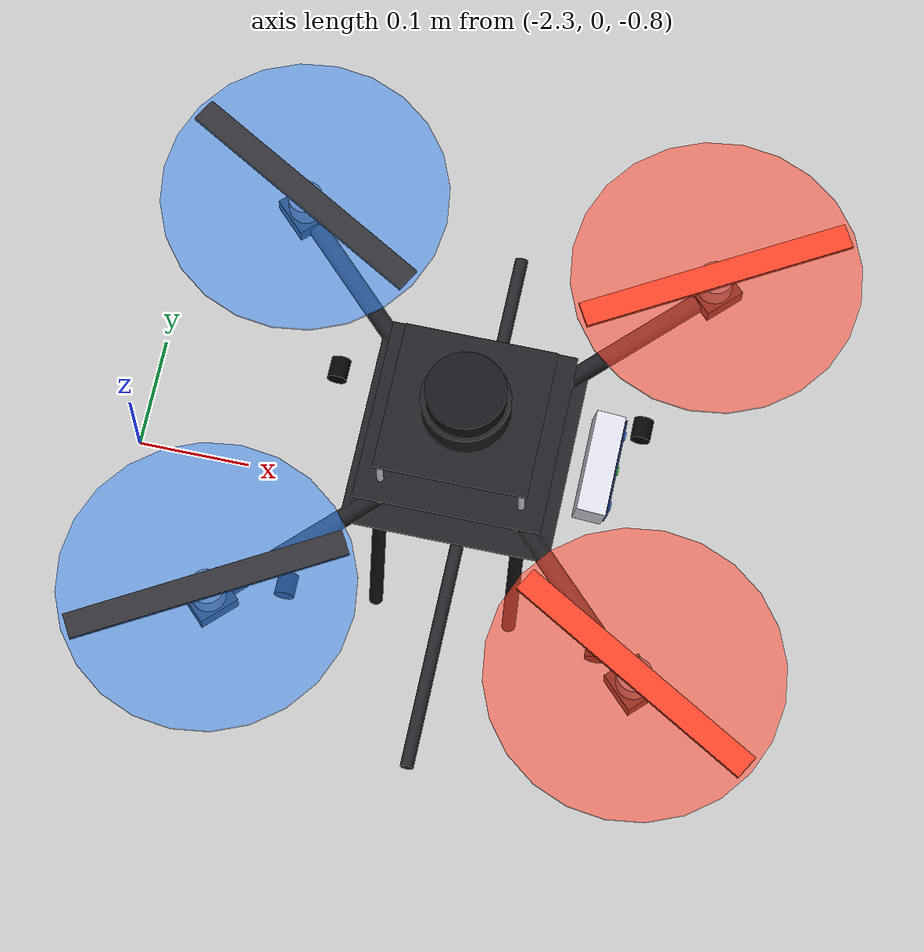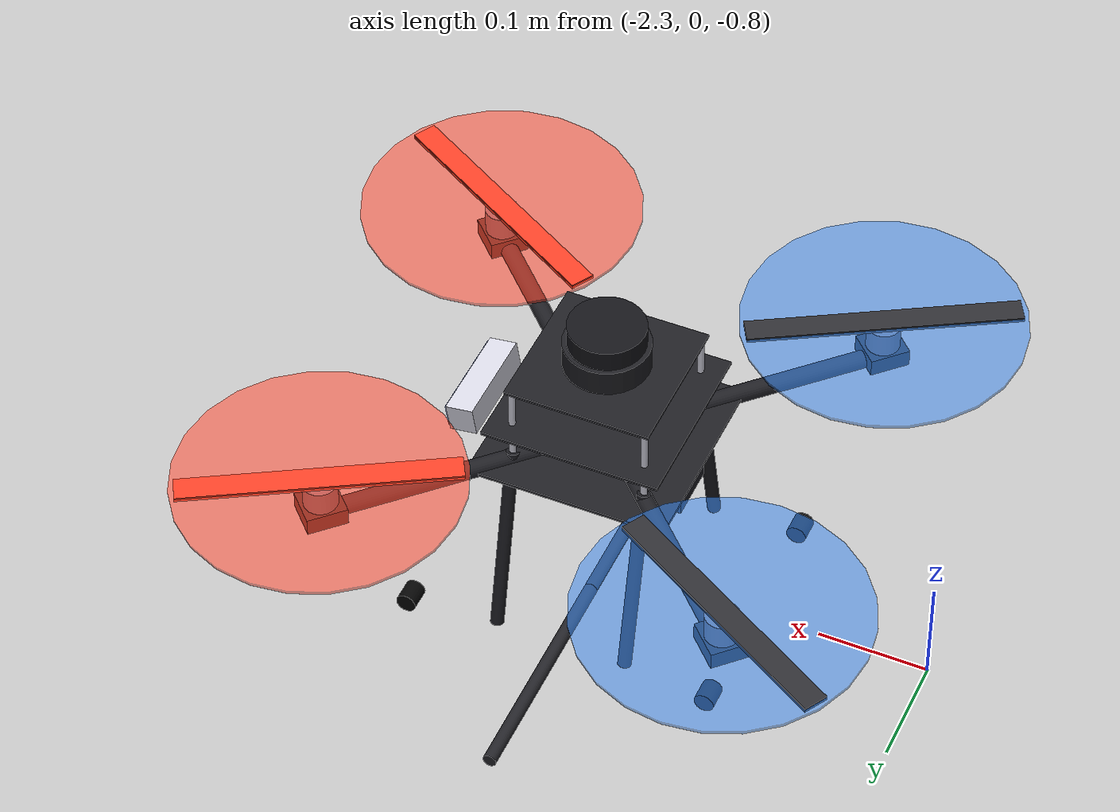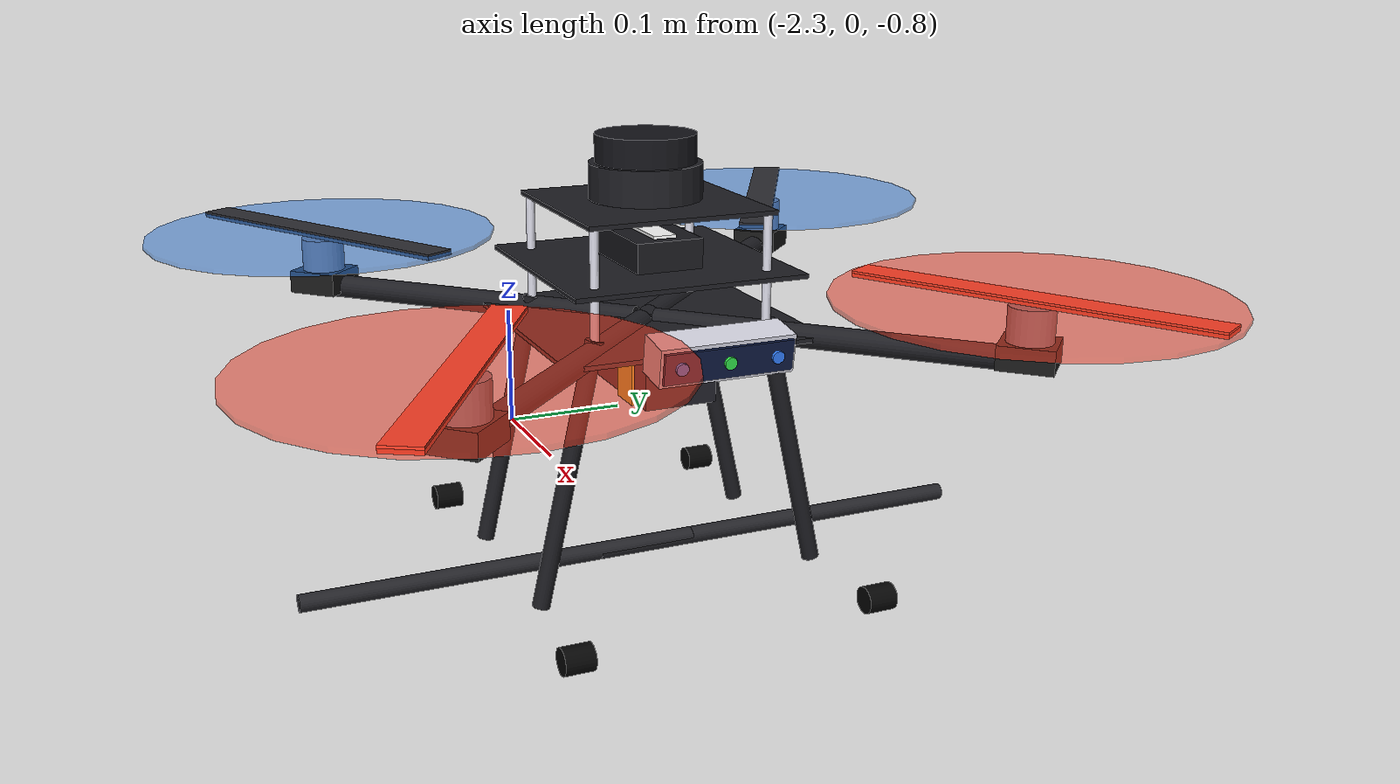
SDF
<sdf version="1.9">
 <world name="default">
  <plugin filename="gz-sim-physics-system" name="gz::sim::systems::Physics"/>
  <plugin filename="gz-sim-sensors-system" name="gz::sim::systems::Sensors">
   <render_engine>ogre2</render_engine>
  </plugin>
  <plugin filename="gz-sim-user-commands-system" name="gz::sim::systems::UserCommands"/>
  <plugin filename="gz-sim-scene-broadcaster-system" name="gz::sim::systems::SceneBroadcaster"/>
  <scene>
   <ambient>0.18 0.17 0.15 1.0</ambient>
   <background>0.01 0.01 0.02 1.0</background>
   <shadows>0</shadows>
  </scene>
  <gravity>0 0 -9.8066</gravity>
  <magnetic_field>6e-06 2.3e-05 -4.2e-05</magnetic_field>
  <atmosphere type="adiabatic"/>
  <physics name="default_physics" default="0" type="ode">
   <max_step_size>0.004</max_step_size>
   <real_time_factor>1</real_time_factor>
   <real_time_update_rate>250</real_time_update_rate>
  </physics>
  <light type="point" name="entrance_light">
   <pose>-2.0 0.0 3.5 0 0 0</pose>
   <diffuse>0.90 0.85 0.72 1</diffuse>
   <specular>0.15 0.15 0.12 1</specular>
   <attenuation>
    <range>30</range>
    <constant>0.22</constant>
    <linear>0.05</linear>
    <quadratic>0.008</quadratic>
   </attenuation>
   <cast_shadows>false</cast_shadows>
  </light>
  <light type="point" name="deep_gallery_light">
   <pose>30.0 -5.0 4.0 0 0 0</pose>
   <diffuse>0.85 0.82 0.70 1</diffuse>
   <specular>0.12 0.12 0.10 1</specular>
   <attenuation>
    <range>45</range>
    <constant>0.20</constant>
    <linear>0.04</linear>
    <quadratic>0.005</quadratic>
   </attenuation>
   <cast_shadows>false</cast_shadows>
  </light>
  <light type="point" name="gallery_b_light">
   <pose>60.0 -20.0 3.5 0 0 0</pose>
   <diffuse>0.88 0.84 0.75 1</diffuse>
   <specular>0.12 0.12 0.10 1</specular>
   <attenuation>
    <range>40</range>
    <constant>0.22</constant>
    <linear>0.05</linear>
    <quadratic>0.007</quadratic>
   </attenuation>
   <cast_shadows>false</cast_shadows>
  </light>
  <light type="point" name="tunnel_deep_light">
   <pose>80.0 -40.0 3.0 0 0 0</pose>
   <diffuse>0.82 0.80 0.72 1</diffuse>
   <specular>0.10 0.10 0.08 1</specular>
   <attenuation>
    <range>35</range>
    <constant>0.25</constant>
    <linear>0.06</linear>
    <quadratic>0.009</quadratic>
   </attenuation>
   <cast_shadows>false</cast_shadows>
  </light>
  <model name="mine_floor">
   <static>true</static>
   <pose>40.0 -20.0 -0.85 0 0 0</pose>
   <link name="link">
    <collision name="floor_col">
     <geometry><box><size>250 120 0.3</size></box></geometry>
     <surface>
      <friction><ode><mu>0.9</mu><mu2>0.9</mu2></ode></friction>
      <contact><ode><max_vel>0.1</max_vel></ode></contact>
     </surface>
    </collision>
   </link>
  </model>
  <model name="mine_ceiling">
   <static>true</static>
   <pose>40.0 -20.0 6.8 0 0 0</pose>
   <link name="link">
    <collision name="ceil_col"><geometry><box><size>250 120 0.3</size></box></geometry></collision>
   </link>
  </model>
  <model name="mine_wall_left">
   <static>true</static>
   <pose>40.0 8.0 3.0 0 0 0</pose>
   <link name="link">
    <collision name="wall_col"><geometry><box><size>250 0.3 15</size></box></geometry></collision>
   </link>
  </model>
  <model name="mine_wall_right">
   <static>true</static>
   <pose>40.0 -75.0 3.0 0 0 0</pose>
   <link name="link">
    <collision name="wall_col"><geometry><box><size>250 0.3 15</size></box></geometry></collision>
   </link>
  </model>
  <model name="mine_wall_back">
   <static>true</static>
   <pose>-4.0 -20.0 3.0 0 0 0</pose>
   <link name="link">
    <collision name="wall_col"><geometry><box><size>0.3 120 15</size></box></geometry></collision>
   </link>
  </model>
  <model name="cave_drone">
   <pose>-2.0 0.0 -0.63 0 0 0</pose>
   <static>false</static>
   <link name="base_link">
    <gravity>false</gravity>
    <inertial><mass>1.8</mass><inertia><ixx>0.045</ixx><iyy>0.045</iyy><izz>0.075</izz></inertia></inertial>
    <visual name="chassis_bottom">
     <geometry><box><size>0.18 0.18 0.003</size></box></geometry>
     <material>
      <ambient>0.08 0.08 0.09 1</ambient>
      <diffuse>0.12 0.12 0.14 1</diffuse>
      <specular>0.6 0.6 0.6 1</specular>
     </material>
    </visual>
    <visual name="chassis_mid">
     <geometry><box><size>0.16 0.16 0.003</size></box></geometry>
     <pose>0 0 0.04 0 0 0</pose>
     <material>
      <ambient>0.08 0.08 0.09 1</ambient>
      <diffuse>0.12 0.12 0.14 1</diffuse>
      <specular>0.6 0.6 0.6 1</specular>
     </material>
    </visual>
    <visual name="chassis_top">
     <geometry><box><size>0.13 0.13 0.003</size></box></geometry>
     <pose>0 0 0.08 0 0 0</pose>
     <material>
      <ambient>0.08 0.08 0.09 1</ambient>
      <diffuse>0.12 0.12 0.14 1</diffuse>
      <specular>0.6 0.6 0.6 1</specular>
     </material>
    </visual>
    <visual name="standoff_fl">
     <geometry><cylinder><radius>0.003</radius><length>0.08</length></cylinder></geometry>
     <pose>0.06 0.06 0.04 0 0 0</pose>
     <material><ambient>0.7 0.7 0.75 1</ambient><diffuse>0.85 0.85 0.9 1</diffuse></material>
    </visual>
    <visual name="standoff_fr">
     <geometry><cylinder><radius>0.003</radius><length>0.08</length></cylinder></geometry>
     <pose>0.06 -0.06 0.04 0 0 0</pose>
     <material><ambient>0.7 0.7 0.75 1</ambient><diffuse>0.85 0.85 0.9 1</diffuse></material>
    </visual>
    <visual name="standoff_rl">
     <geometry><cylinder><radius>0.003</radius><length>0.08</length></cylinder></geometry>
     <pose>-0.06 0.06 0.04 0 0 0</pose>
     <material><ambient>0.7 0.7 0.75 1</ambient><diffuse>0.85 0.85 0.9 1</diffuse></material>
    </visual>
    <visual name="standoff_rr">
     <geometry><cylinder><radius>0.003</radius><length>0.08</length></cylinder></geometry>
     <pose>-0.06 -0.06 0.04 0 0 0</pose>
     <material><ambient>0.7 0.7 0.75 1</ambient><diffuse>0.85 0.85 0.9 1</diffuse></material>
    </visual>
    <visual name="pixhawk_body">
     <geometry><box><size>0.082 0.046 0.020</size></box></geometry>
     <pose>0 0 0.052 0 0 0</pose>
     <material>
      <ambient>0.05 0.05 0.06 1</ambient>
      <diffuse>0.10 0.10 0.12 1</diffuse>
      <specular>0.9 0.9 0.95 1</specular>
     </material>
    </visual>
    <visual name="pixhawk_logo">
     <geometry><box><size>0.035 0.016 0.002</size></box></geometry>
     <pose>0.015 0 0.063 0 0 0</pose>
     <material><ambient>0.9 0.9 0.9 1</ambient><diffuse>1 1 1 1</diffuse></material>
    </visual>
    <visual name="pixhawk_led">
     <geometry><box><size>0.008 0.008 0.002</size></box></geometry>
     <pose>-0.025 0 0.063 0 0 0</pose>
     <material><ambient>0 1 0.8 1</ambient><diffuse>0 1 0.8 1</diffuse><emissive>0 1 0.8 1</emissive></material>
    </visual>
    <visual name="realsense_body">
     <geometry><box><size>0.025 0.090 0.025</size></box></geometry>
     <pose>0.115 0 0.008 0 0.15 0</pose>
     <material>
      <ambient>0.75 0.75 0.80 1</ambient>
      <diffuse>0.85 0.85 0.90 1</diffuse>
      <specular>1 1 1 1</specular>
     </material>
    </visual>
    <visual name="realsense_glass">
     <geometry><box><size>0.003 0.086 0.020</size></box></geometry>
     <pose>0.128 0 0.006 0 0.15 0</pose>
     <material>
      <ambient>0.02 0.05 0.15 1</ambient>
      <diffuse>0.05 0.10 0.25 1</diffuse>
      <specular>1 1 1 1</specular>
     </material>
    </visual>
    <visual name="realsense_ir1">
     <geometry><cylinder><radius>0.004</radius><length>0.005</length></cylinder></geometry>
     <pose>0.129 0.032 0.006 0 1.72 0</pose>
     <material><ambient>0.1 0.3 0.7 1</ambient><diffuse>0.2 0.5 1 1</diffuse></material>
    </visual>
    <visual name="realsense_rgb">
     <geometry><cylinder><radius>0.004</radius><length>0.005</length></cylinder></geometry>
     <pose>0.129 0.000 0.006 0 1.72 0</pose>
     <material><ambient>0.1 0.6 0.2 1</ambient><diffuse>0.2 0.9 0.3 1</diffuse></material>
    </visual>
    <visual name="realsense_ir2">
     <geometry><cylinder><radius>0.004</radius><length>0.005</length></cylinder></geometry>
     <pose>0.129 -0.032 0.006 0 1.72 0</pose>
     <material><ambient>0.1 0.3 0.7 1</ambient><diffuse>0.2 0.5 1 1</diffuse></material>
    </visual>
    <visual name="rplidar_base">
     <geometry><cylinder><radius>0.038</radius><length>0.024</length></cylinder></geometry>
     <pose>0 0 0.095 0 0 0</pose>
     <material><ambient>0.06 0.06 0.07 1</ambient><diffuse>0.12 0.12 0.14 1</diffuse></material>
    </visual>
    <visual name="rplidar_puck">
     <geometry><cylinder><radius>0.034</radius><length>0.020</length></cylinder></geometry>
     <pose>0 0 0.116 0 0 0</pose>
     <material>
      <ambient>0.04 0.04 0.05 1</ambient>
      <diffuse>0.08 0.08 0.10 1</diffuse>
      <specular>0.8 0.8 0.8 1</specular>
     </material>
    </visual>
    <visual name="rplidar_slit">
     <geometry><box><size>0.008 0.066 0.004</size></box></geometry>
     <pose>0 0 0.116 0 0 0</pose>
     <material><ambient>1 0 0 1</ambient><diffuse>1 0.1 0.1 1</diffuse><emissive>0.8 0 0 1</emissive></material>
    </visual>
    <visual name="lipo_battery">
     <geometry><box><size>0.138 0.050 0.038</size></box></geometry>
     <pose>-0.01 0 -0.025 0 0 0</pose>
     <material><ambient>0.06 0.06 0.07 1</ambient><diffuse>0.12 0.12 0.15 1</diffuse></material>
    </visual>
    <visual name="lipo_strap_1">
     <geometry><box><size>0.024 0.054 0.042</size></box></geometry>
     <pose>0.028 0 -0.025 0 0 0</pose>
     <material><ambient>0.95 0.80 0.05 1</ambient><diffuse>1.0 0.85 0.1 1</diffuse></material>
    </visual>
    <visual name="lipo_strap_2">
     <geometry><box><size>0.024 0.054 0.042</size></box></geometry>
     <pose>-0.048 0 -0.025 0 0 0</pose>
     <material><ambient>0.95 0.80 0.05 1</ambient><diffuse>1.0 0.85 0.1 1</diffuse></material>
    </visual>
    <visual name="arm_fl">
     <geometry><cylinder><radius>0.008</radius><length>0.24</length></cylinder></geometry>
     <pose>0.09 0.09 0.0 0 1.5708 0.785</pose>
     <material><ambient>0.07 0.07 0.08 1</ambient><diffuse>0.12 0.12 0.14 1</diffuse></material>
    </visual>
    <visual name="arm_fr">
     <geometry><cylinder><radius>0.008</radius><length>0.24</length></cylinder></geometry>
     <pose>0.09 -0.09 0.0 0 1.5708 -0.785</pose>
     <material><ambient>0.07 0.07 0.08 1</ambient><diffuse>0.12 0.12 0.14 1</diffuse></material>
    </visual>
    <visual name="arm_rl">
     <geometry><cylinder><radius>0.008</radius><length>0.24</length></cylinder></geometry>
     <pose>-0.09 0.09 0.0 0 1.5708 -0.785</pose>
     <material><ambient>0.07 0.07 0.08 1</ambient><diffuse>0.12 0.12 0.14 1</diffuse></material>
    </visual>
    <visual name="arm_rr">
     <geometry><cylinder><radius>0.008</radius><length>0.24</length></cylinder></geometry>
     <pose>-0.09 -0.09 0.0 0 1.5708 0.785</pose>
     <material><ambient>0.07 0.07 0.08 1</ambient><diffuse>0.12 0.12 0.14 1</diffuse></material>
    </visual>
    <visual name="mount_fl">
     <geometry><box><size>0.036 0.034 0.016</size></box></geometry>
     <pose>0.18 0.18 0.004 0 0 0.785</pose>
     <material><ambient>0.1 0.1 0.1 1</ambient></material>
    </visual>
    <visual name="mount_fr">
     <geometry><box><size>0.036 0.034 0.016</size></box></geometry>
     <pose>0.18 -0.18 0.004 0 0 -0.785</pose>
     <material><ambient>0.1 0.1 0.1 1</ambient></material>
    </visual>
    <visual name="mount_rl">
     <geometry><box><size>0.036 0.034 0.016</size></box></geometry>
     <pose>-0.18 0.18 0.004 0 0 -0.785</pose>
     <material><ambient>0.1 0.1 0.1 1</ambient></material>
    </visual>
    <visual name="mount_rr">
     <geometry><box><size>0.036 0.034 0.016</size></box></geometry>
     <pose>-0.18 -0.18 0.004 0 0 0.785</pose>
     <material><ambient>0.1 0.1 0.1 1</ambient></material>
    </visual>
    <visual name="motor_fl">
     <geometry><cylinder><radius>0.015</radius><length>0.026</length></cylinder></geometry>
     <pose>0.18 0.18 0.022 0 0 0</pose>
     <material>
      <ambient>0.3 0.3 0.35 1</ambient>
      <diffuse>0.5 0.5 0.55 1</diffuse>
      <specular>1 1 1 1</specular>
     </material>
    </visual>
    <visual name="motor_fr">
     <geometry><cylinder><radius>0.015</radius><length>0.026</length></cylinder></geometry>
     <pose>0.18 -0.18 0.022 0 0 0</pose>
     <material>
      <ambient>0.3 0.3 0.35 1</ambient>
      <diffuse>0.5 0.5 0.55 1</diffuse>
      <specular>1 1 1 1</specular>
     </material>
    </visual>
    <visual name="motor_rl">
     <geometry><cylinder><radius>0.015</radius><length>0.026</length></cylinder></geometry>
     <pose>-0.18 0.18 0.022 0 0 0</pose>
     <material>
      <ambient>0.3 0.3 0.35 1</ambient>
      <diffuse>0.5 0.5 0.55 1</diffuse>
      <specular>1 1 1 1</specular>
     </material>
    </visual>
    <visual name="motor_rr">
     <geometry><cylinder><radius>0.015</radius><length>0.026</length></cylinder></geometry>
     <pose>-0.18 -0.18 0.022 0 0 0</pose>
     <material>
      <ambient>0.3 0.3 0.35 1</ambient>
      <diffuse>0.5 0.5 0.55 1</diffuse>
      <specular>1 1 1 1</specular>
     </material>
    </visual>
    <visual name="prop_disc_fl">
     <geometry><cylinder><radius>0.125</radius><length>0.003</length></cylinder></geometry>
     <pose>0.18 0.18 0.038 0 0 0</pose>
     <material>
      <ambient>0.8 0.2 0.1 0.45</ambient>
      <diffuse>1.0 0.25 0.15 0.55</diffuse>
      <specular>0.6 0.6 0.6 0.8</specular>
     </material>
    </visual>
    <visual name="prop_blade_fl">
     <geometry><box><size>0.24 0.022 0.004</size></box></geometry>
     <pose>0.18 0.18 0.039 0 0 0.52</pose>
     <material><ambient>0.9 0.2 0.1 0.9</ambient><diffuse>1.0 0.25 0.15 0.95</diffuse></material>
    </visual>
    <visual name="prop_disc_fr">
     <geometry><cylinder><radius>0.125</radius><length>0.003</length></cylinder></geometry>
     <pose>0.18 -0.18 0.038 0 0 0</pose>
     <material>
      <ambient>0.8 0.2 0.1 0.45</ambient>
      <diffuse>1.0 0.25 0.15 0.55</diffuse>
      <specular>0.6 0.6 0.6 0.8</specular>
     </material>
    </visual>
    <visual name="prop_blade_fr">
     <geometry><box><size>0.24 0.022 0.004</size></box></geometry>
     <pose>0.18 -0.18 0.039 0 0 -0.52</pose>
     <material><ambient>0.9 0.2 0.1 0.9</ambient><diffuse>1.0 0.25 0.15 0.95</diffuse></material>
    </visual>
    <visual name="prop_disc_rl">
     <geometry><cylinder><radius>0.125</radius><length>0.003</length></cylinder></geometry>
     <pose>-0.18 0.18 0.038 0 0 0</pose>
     <material>
      <ambient>0.15 0.35 0.7 0.45</ambient>
      <diffuse>0.2 0.5 0.9 0.55</diffuse>
      <specular>0.6 0.6 0.6 0.8</specular>
     </material>
    </visual>
    <visual name="prop_blade_rl">
     <geometry><box><size>0.24 0.022 0.004</size></box></geometry>
     <pose>-0.18 0.18 0.039 0 0 -0.52</pose>
     <material><ambient>0.1 0.1 0.12 0.9</ambient><diffuse>0.18 0.18 0.2 0.95</diffuse></material>
    </visual>
    <visual name="prop_disc_rr">
     <geometry><cylinder><radius>0.125</radius><length>0.003</length></cylinder></geometry>
     <pose>-0.18 -0.18 0.038 0 0 0</pose>
     <material>
      <ambient>0.15 0.35 0.7 0.45</ambient>
      <diffuse>0.2 0.5 0.9 0.55</diffuse>
      <specular>0.6 0.6 0.6 0.8</specular>
     </material>
    </visual>
    <visual name="prop_blade_rr">
     <geometry><box><size>0.24 0.022 0.004</size></box></geometry>
     <pose>-0.18 -0.18 0.039 0 0 0.52</pose>
     <material><ambient>0.1 0.1 0.12 0.9</ambient><diffuse>0.18 0.18 0.2 0.95</diffuse></material>
    </visual>
    <visual name="leg_fl">
     <geometry><cylinder><radius>0.006</radius><length>0.18</length></cylinder></geometry>
     <pose>0.06 0.08 -0.08 0.22 0 0</pose>
     <material><ambient>0.06 0.06 0.07 1</ambient><diffuse>0.1 0.1 0.12 1</diffuse></material>
    </visual>
    <visual name="leg_rl">
     <geometry><cylinder><radius>0.006</radius><length>0.18</length></cylinder></geometry>
     <pose>-0.06 0.08 -0.08 0.22 0 0</pose>
     <material><ambient>0.06 0.06 0.07 1</ambient><diffuse>0.1 0.1 0.12 1</diffuse></material>
    </visual>
    <visual name="leg_fr">
     <geometry><cylinder><radius>0.006</radius><length>0.18</length></cylinder></geometry>
     <pose>0.06 -0.08 -0.08 -0.22 0 0</pose>
     <material><ambient>0.06 0.06 0.07 1</ambient><diffuse>0.1 0.1 0.12 1</diffuse></material>
    </visual>
    <visual name="leg_rr">
     <geometry><cylinder><radius>0.006</radius><length>0.18</length></cylinder></geometry>
     <pose>-0.06 -0.08 -0.08 -0.22 0 0</pose>
     <material><ambient>0.06 0.06 0.07 1</ambient><diffuse>0.1 0.1 0.12 1</diffuse></material>
    </visual>
    <visual name="skid_l">
     <geometry><cylinder><radius>0.006</radius><length>0.28</length></cylinder></geometry>
     <pose>0 0.105 -0.165 1.5708 0 0</pose>
     <material><ambient>0.08 0.08 0.09 1</ambient><diffuse>0.14 0.14 0.16 1</diffuse></material>
    </visual>
    <visual name="skid_r">
     <geometry><cylinder><radius>0.006</radius><length>0.28</length></cylinder></geometry>
     <pose>0 -0.105 -0.165 1.5708 0 0</pose>
     <material><ambient>0.08 0.08 0.09 1</ambient><diffuse>0.14 0.14 0.16 1</diffuse></material>
    </visual>
    <visual name="skid_cap_fl">
     <geometry><cylinder><radius>0.009</radius><length>0.02</length></cylinder></geometry>
     <pose>0.14 0.105 -0.165 1.5708 0 0</pose>
     <material><ambient>0.02 0.02 0.02 1</ambient></material>
    </visual>
    <visual name="skid_cap_rl">
     <geometry><cylinder><radius>0.009</radius><length>0.02</length></cylinder></geometry>
     <pose>-0.14 0.105 -0.165 1.5708 0 0</pose>
     <material><ambient>0.02 0.02 0.02 1</ambient></material>
    </visual>
    <visual name="skid_cap_fr">
     <geometry><cylinder><radius>0.009</radius><length>0.02</length></cylinder></geometry>
     <pose>0.14 -0.105 -0.165 1.5708 0 0</pose>
     <material><ambient>0.02 0.02 0.02 1</ambient></material>
    </visual>
    <visual name="skid_cap_rr">
     <geometry><cylinder><radius>0.009</radius><length>0.02</length></cylinder></geometry>
     <pose>-0.14 -0.105 -0.165 1.5708 0 0</pose>
     <material><ambient>0.02 0.02 0.02 1</ambient></material>
    </visual>
    <collision name="col">
     <geometry><box><size>0.48 0.48 0.32</size></box></geometry>
     <pose>0 0 -0.02 0 0 0</pose>
    </collision>
    <light type="spot" name="drone_headlight">
     <pose>0.14 0 0.01 0 0 0</pose>
     <diffuse>0.90 0.90 0.92 1</diffuse>
     <specular>0.2 0.2 0.2 1</specular>
     <attenuation>
      <range>45</range>
      <constant>0.50</constant>
      <linear>0.02</linear>
      <quadratic>0.002</quadratic>
     </attenuation>
     <spot><inner_angle>1.10</inner_angle><outer_angle>1.65</outer_angle><falloff>0.45</falloff></spot>
     <direction>1 0 0</direction>
     <cast_shadows>false</cast_shadows>
    </light>
    <sensor name="camera" type="camera">
     <pose>-1.35 0 0.45 0 0.16 0</pose>
     <camera>
      <horizontal_fov>1.42</horizontal_fov>
      <image><width>640</width><height>480</height><format>R8G8B8</format></image>
      <clip><near>0.05</near><far>150.0</far></clip>
     </camera>
     <always_on>1</always_on>
     <update_rate>30</update_rate>
     <visualize>true</visualize>
     <topic>camera</topic>
    </sensor>
    <sensor name="gpu_lidar" type="gpu_lidar">
     <pose>0.0 0 0.116 0 0 0</pose>
     <topic>lidar</topic>
     <update_rate>10</update_rate>
     <ray>
      <scan>
       <horizontal>
        <samples>72</samples>
        <resolution>1</resolution>
        <min_angle>-3.14159265</min_angle>
        <max_angle>3.14159265</max_angle>
       </horizontal>
      </scan>
      <range><min>0.12</min><max>20.0</max><resolution>0.01</resolution></range>
     </ray>
     <always_on>1</always_on>
     <visualize>false</visualize>
    </sensor>
   </link>
   <plugin filename="gz-sim-velocity-control-system" name="gz::sim::systems::VelocityControl">
    <initial_linear>0 0 0</initial_linear>
    <initial_angular>0 0 0</initial_angular>
    <topic>/cmd_vel</topic>
   </plugin>
   <plugin filename="gz-sim-odometry-publisher-system" name="gz::sim::systems::OdometryPublisher">
    <odom_topic>/model/cave_drone/odometry</odom_topic>
    <dimensions>3</dimensions>
   </plugin>
  </model>
 </world>
</sdf>
